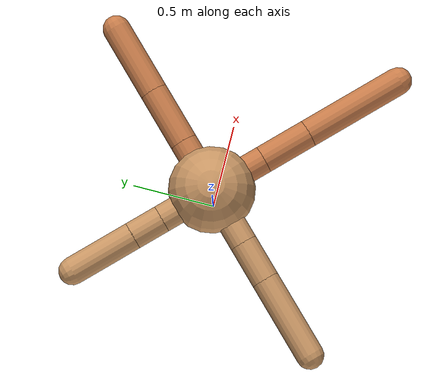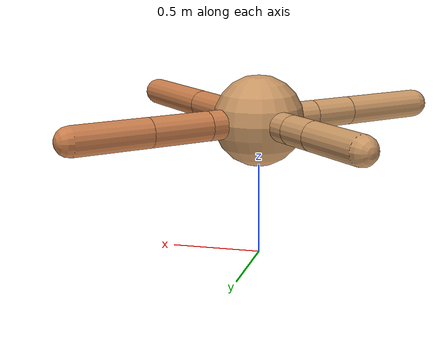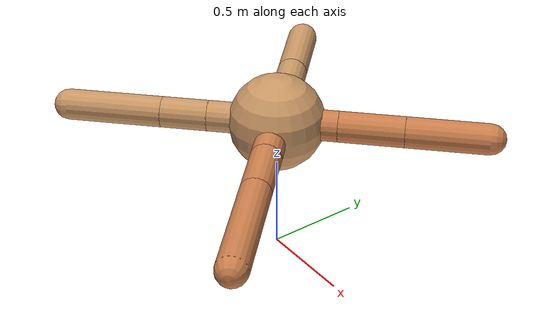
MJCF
<mujoco model="ant">
  <compiler angle="degree" coordinate="local" inertiafromgeom="true" />
  <option integrator="RK4" timestep="0.01" />
  <custom>
    <numeric data="0.0 0.0 0.55 1.0 0.0 0.0 0.0 0.0 1.0 0.0 -1.0 0.0 -1.0 0.0 1.0" name="init_qpos" />
  </custom>
  <default>
    <joint armature="1" damping="1" limited="true" />
    <geom conaffinity="0" condim="3" density="5.0" friction="1.5 0.1 0.1" margin="0.01" rgba="0.8 0.6 0.4 1" />
  </default>
  <worldbody>
    <body name="torso" pos="0 0 0.75">
      <geom name="torso_geom" pos="0 0 0" size="0.25" type="sphere" />

      <body name="front_left_leg" pos="0 0 0">
        <geom fromto="0.0 0.0 0.0 0.22345606462834278 0.22345606462834278 0.0" name="aux_1_geom" size="0.08" type="capsule" rgba=".8 .5 .3 1" />
        <body name="aux_1" pos="0.22345606462834278 0.22345606462834278 0.0">
          <joint axis="0 0 1" name="hip_1" pos="0.0 0.0 0.0" range="-40 40" type="hinge" />
          <geom fromto="0.0 0.0 0.0 0.23919265721790836 0.23919265721790836 0.0" name="left_leg_geom" size="0.08" type="capsule" rgba=".8 .5 .3 1" />
          <body pos="0.23919265721790836 0.23919265721790836 0.0" name="front_left_foot">
            <joint axis="-1 1 0" name="ankle_1" pos="0.0 0.0 0.0" range="30 100" type="hinge" />
            <geom fromto="0.0 0.0 0.0 0.30163706177766736 0.30163706177766736 0.0" name="left_ankle_geom" size="0.08" type="capsule" rgba=".8 .5 .3 1" />
          </body>
        </body>
      </body>
      <body name="front_right_leg" pos="0 0 0">
        <geom fromto="0.0 0.0 0.0 -0.23384142938906685 0.23384142938906685 0.0" name="aux_2_geom" size="0.08" type="capsule" />
        <body name="aux_2" pos="-0.23384142938906685 0.23384142938906685 0.0">
          <joint axis="0 0 1" name="hip_2" pos="0.0 0.0 0.0" range="-40 40" type="hinge" />
          <geom fromto="0.0 0.0 0.0 -0.13383856991680218 0.13383856991680218 0.0" name="right_leg_geom" size="0.08" type="capsule" />
          <body pos="-0.13383856991680218 0.13383856991680218 0.0" name="front_right_foot">
            <joint axis="1 1 0" name="ankle_2" pos="0.0 0.0 0.0" range="-100 -30" type="hinge" />
            <geom fromto="0.0 0.0 0.0 -0.2781304604861928 0.2781304604861928 0.0" name="right_ankle_geom" size="0.08" type="capsule" />
          </body>
        </body>
      </body>
      <body name="left_back_leg" pos="0 0 0">
        <geom fromto="0.0 0.0 0.0 -0.25160390114819847 -0.25160390114819847 0.0" name="aux_3_geom" size="0.08" type="capsule" />
        <body name="aux_3" pos="-0.25160390114819847 -0.25160390114819847 0.0">
          <joint axis="0 0 1" name="hip_3" pos="0.0 0.0 0.0" range="-40 40" type="hinge" />
          <geom fromto="0.0 0.0 0.0 -0.17135233938099764 -0.17135233938099764 0.0" name="back_leg_geom" size="0.08" type="capsule" />
          <body pos="-0.17135233938099764 -0.17135233938099764 0.0" name="left_back_foot">
            <joint axis="-1 1 0" name="ankle_3" pos="0.0 0.0 0.0" range="-100 -30" type="hinge" />
            <geom fromto="0.0 0.0 0.0 -0.348004215503694 -0.348004215503694 0.0" name="third_ankle_geom" size="0.08" type="capsule" />
          </body>
        </body>
      </body>
      <body name="right_back_leg" pos="0 0 0">
        <geom fromto="0.0 0.0 0.0 0.24014155823924888 -0.24014155823924888 0.0" name="aux_4_geom" size="0.08" type="capsule" rgba=".8 .5 .3 1" />
        <body name="aux_4" pos="0.24014155823924888 -0.24014155823924888 0.0">
          <joint axis="0 0 1" name="hip_4" pos="0.0 0.0 0.0" range="-40 40" type="hinge" />
          <geom fromto="0.0 0.0 0.0 0.20936769695619023 -0.20936769695619023 0.0" name="rightback_leg_geom" size="0.08" type="capsule" rgba=".8 .5 .3 1" />
          <body pos="0.20936769695619023 -0.20936769695619023 0.0" name="right_back_foot">
            <joint axis="1 1 0" name="ankle_4" pos="0.0 0.0 0.0" range="30 100" type="hinge" />
            <geom fromto="0.0 0.0 0.0 0.42538147514848856 -0.42538147514848856 0.0" name="fourth_ankle_geom" size="0.08" type="capsule" rgba=".8 .5 .3 1" />
          </body>
        </body>
      </body>
    </body>
  </worldbody>
  <actuator>
    <motor ctrllimited="true" ctrlrange="-1.0 1.0" joint="hip_4" gear="150" />
    <motor ctrllimited="true" ctrlrange="-1.0 1.0" joint="ankle_4" gear="150" />
    <motor ctrllimited="true" ctrlrange="-1.0 1.0" joint="hip_1" gear="150" />
    <motor ctrllimited="true" ctrlrange="-1.0 1.0" joint="ankle_1" gear="150" />
    <motor ctrllimited="true" ctrlrange="-1.0 1.0" joint="hip_2" gear="150" />
    <motor ctrllimited="true" ctrlrange="-1.0 1.0" joint="ankle_2" gear="150" />
    <motor ctrllimited="true" ctrlrange="-1.0 1.0" joint="hip_3" gear="150" />
    <motor ctrllimited="true" ctrlrange="-1.0 1.0" joint="ankle_3" gear="150" />
  </actuator>
</mujoco>
